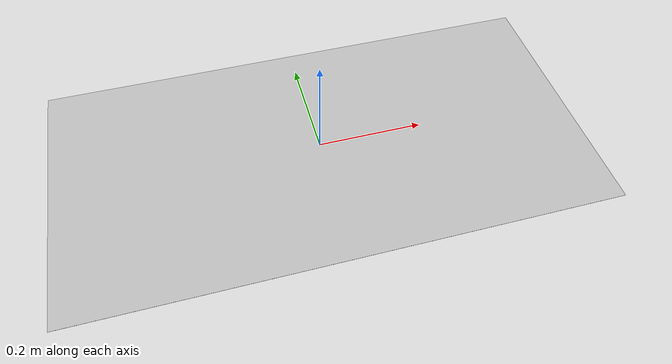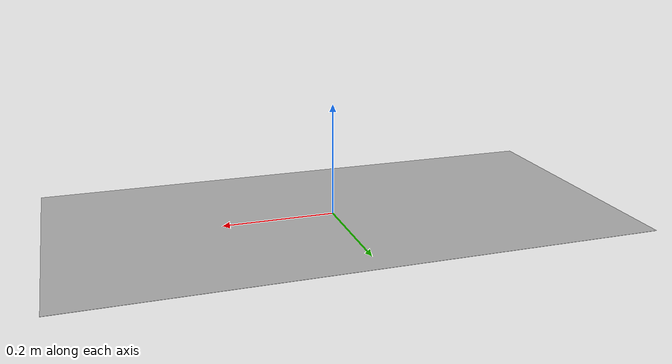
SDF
<?xml version="1.0"?>
<sdf version="1.4">
<model name="chess_flag">
  <static>true</static>
    <link name="link">
      <collision name="collision">
        <geometry>
          <plane>
            <normal>0 0 1</normal>
            <size>1 0.5</size>
          </plane>
        </geometry>
        <surface>
          <friction>
            <ode>
              <mu>100</mu>
              <mu2>50</mu2>
            </ode>
          </friction>
        </surface>
      </collision>
      <visual name="visual">
        <cast_shadows>false</cast_shadows>
        <geometry>
          <plane>
            <normal>0 0 1</normal>
            <size>1 0.5</size>
          </plane>
        </geometry>
        <material>
          <script>
            <uri>model://heineken_logo/materials/scripts</uri>
            <uri>model://heineken_logo/materials/textures</uri>
            <name>Heineken/Image</name>
          </script>
        </material>
      </visual>
    </link>
  </model>
</sdf>
